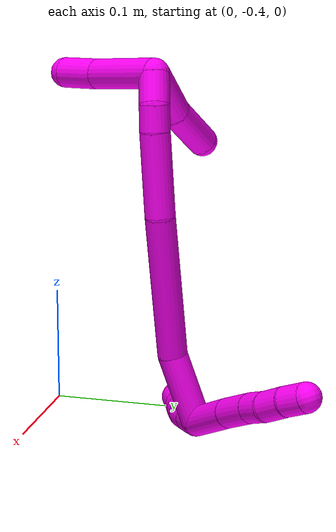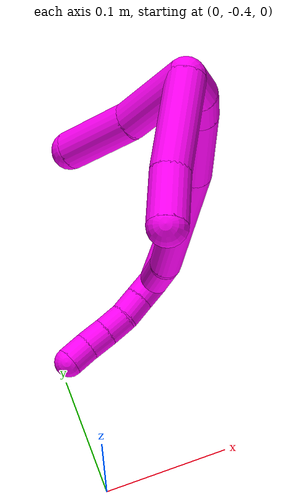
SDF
<sdf version="1.7">
 <world name="default">
  <model name="10">
   <static>0</static>
   <link name="10">
    <collision name="collision-cylinder-e_1_2_8">
     <pose>0.009582 0.024566 -0.001098 -1.61547 0.371574 -0.388143</pose>
     <geometry><cylinder><radius>0.0125</radius><length>0.052782</length></cylinder></geometry>
     <surface>
      <friction><ode><mu>1.16</mu><mu2>1.16</mu2><slip1>0</slip1><slip2>0</slip2></ode></friction>
      <contact><ode><kp>1e+06</kp><kd>1</kd><max_vel>0</max_vel><min_depth>0.001</min_depth></ode></contact>
     </surface>
    </collision>
    <visual name="visual-cylinder-e_1_2_8">
     <pose>0.009582 0.024566 -0.001098 -1.61547 0.371574 -0.388143</pose>
     <geometry><cylinder><radius>0.0125</radius><length>0.052782</length></cylinder></geometry>
     <material><ambient>1 0 0.964706 1</ambient></material>
    </visual>
    <collision name="collision-cylinder-e_2_8_9">
     <pose>0.024539 0.064834 -0.003431 -1.64926 0.32886 -0.355192</pose>
     <geometry><cylinder><radius>0.0125</radius><length>0.033286</length></cylinder></geometry>
     <surface>
      <friction><ode><mu>1.16</mu><mu2>1.16</mu2><slip1>0</slip1><slip2>0</slip2></ode></friction>
      <contact><ode><kp>1e+06</kp><kd>1</kd><max_vel>0</max_vel><min_depth>0.001</min_depth></ode></contact>
     </surface>
    </collision>
    <visual name="visual-cylinder-e_2_8_9">
     <pose>0.024539 0.064834 -0.003431 -1.64926 0.32886 -0.355192</pose>
     <geometry><cylinder><radius>0.0125</radius><length>0.033286</length></cylinder></geometry>
     <material><ambient>1 0 0.964706 1</ambient></material>
    </visual>
    <collision name="collision-cylinder-e_3_9_10">
     <pose>0.033376 0.089992 -0.006116 -1.72296 0.347233 -0.403103</pose>
     <geometry><cylinder><radius>0.0125</radius><length>0.020345</length></cylinder></geometry>
     <surface>
      <friction><ode><mu>1.16</mu><mu2>1.16</mu2><slip1>0</slip1><slip2>0</slip2></ode></friction>
      <contact><ode><kp>1e+06</kp><kd>1</kd><max_vel>0</max_vel><min_depth>0.001</min_depth></ode></contact>
     </surface>
    </collision>
    <visual name="visual-cylinder-e_3_9_10">
     <pose>0.033376 0.089992 -0.006116 -1.72296 0.347233 -0.403103</pose>
     <geometry><cylinder><radius>0.0125</radius><length>0.020345</length></cylinder></geometry>
     <material><ambient>1 0 0.964706 1</ambient></material>
    </visual>
    <collision name="collision-cylinder-e_4_10_11">
     <pose>0.038791 0.110756 -0.008217 -1.62837 0.170749 -0.18082</pose>
     <geometry><cylinder><radius>0.0125</radius><length>0.022991</length></cylinder></geometry>
     <surface>
      <friction><ode><mu>1.16</mu><mu2>1.16</mu2><slip1>0</slip1><slip2>0</slip2></ode></friction>
      <contact><ode><kp>1e+06</kp><kd>1</kd><max_vel>0</max_vel><min_depth>0.001</min_depth></ode></contact>
     </surface>
    </collision>
    <visual name="visual-cylinder-e_4_10_11">
     <pose>0.038791 0.110756 -0.008217 -1.62837 0.170749 -0.18082</pose>
     <geometry><cylinder><radius>0.0125</radius><length>0.022991</length></cylinder></geometry>
     <material><ambient>1 0 0.964706 1</ambient></material>
    </visual>
    <collision name="collision-cylinder-e_5_11_6">
     <pose>0.041247 0.132287 -0.010013 -1.68225 0.048812 -0.054577</pose>
     <geometry><cylinder><radius>0.0125</radius><length>0.020595</length></cylinder></geometry>
     <surface>
      <friction><ode><mu>1.16</mu><mu2>1.16</mu2><slip1>0</slip1><slip2>0</slip2></ode></friction>
      <contact><ode><kp>1e+06</kp><kd>1</kd><max_vel>0</max_vel><min_depth>0.001</min_depth></ode></contact>
     </surface>
    </collision>
    <visual name="visual-cylinder-e_5_11_6">
     <pose>0.041247 0.132287 -0.010013 -1.68225 0.048812 -0.054577</pose>
     <geometry><cylinder><radius>0.0125</radius><length>0.020595</length></cylinder></geometry>
     <material><ambient>1 0 0.964706 1</ambient></material>
    </visual>
    <collision name="collision-cylinder-e_1_2_12">
     <pose>-0.006146 -0.007482 0.002501 1.24816 -0.661833 -0.485031</pose>
     <geometry><cylinder><radius>0.0125</radius><length>0.02</length></cylinder></geometry>
     <surface>
      <friction><ode><mu>1.16</mu><mu2>1.16</mu2><slip1>0</slip1><slip2>0</slip2></ode></friction>
      <contact><ode><kp>1e+06</kp><kd>1</kd><max_vel>0</max_vel><min_depth>0.001</min_depth></ode></contact>
     </surface>
    </collision>
    <visual name="visual-cylinder-e_1_2_12">
     <pose>-0.006146 -0.007482 0.002501 1.24816 -0.661833 -0.485031</pose>
     <geometry><cylinder><radius>0.0125</radius><length>0.02</length></cylinder></geometry>
     <material><ambient>1 0 0.964706 1</ambient></material>
    </visual>
    <collision name="collision-cylinder-e_2_12_13">
     <pose>-0.018298 -0.022422 0.007881 1.20251 -0.64435 -0.450208</pose>
     <geometry><cylinder><radius>0.0125</radius><length>0.02</length></cylinder></geometry>
     <surface>
      <friction><ode><mu>1.16</mu><mu2>1.16</mu2><slip1>0</slip1><slip2>0</slip2></ode></friction>
      <contact><ode><kp>1e+06</kp><kd>1</kd><max_vel>0</max_vel><min_depth>0.001</min_depth></ode></contact>
     </surface>
    </collision>
    <visual name="visual-cylinder-e_2_12_13">
     <pose>-0.018298 -0.022422 0.007881 1.20251 -0.64435 -0.450208</pose>
     <geometry><cylinder><radius>0.0125</radius><length>0.02</length></cylinder></geometry>
     <material><ambient>1 0 0.964706 1</ambient></material>
    </visual>
    <collision name="collision-cylinder-e_3_13_14">
     <pose>-0.03174 -0.036183 0.012993 1.23011 -0.838348 -0.609943</pose>
     <geometry><cylinder><radius>0.0125</radius><length>0.02</length></cylinder></geometry>
     <surface>
      <friction><ode><mu>1.16</mu><mu2>1.16</mu2><slip1>0</slip1><slip2>0</slip2></ode></friction>
      <contact><ode><kp>1e+06</kp><kd>1</kd><max_vel>0</max_vel><min_depth>0.001</min_depth></ode></contact>
     </surface>
    </collision>
    <visual name="visual-cylinder-e_3_13_14">
     <pose>-0.03174 -0.036183 0.012993 1.23011 -0.838348 -0.609943</pose>
     <geometry><cylinder><radius>0.0125</radius><length>0.02</length></cylinder></geometry>
     <material><ambient>1 0 0.964706 1</ambient></material>
    </visual>
    <collision name="collision-cylinder-e_4_14_15">
     <pose>-0.046756 -0.048465 0.017834 1.15979 -0.860281 -0.58386</pose>
     <geometry><cylinder><radius>0.0125</radius><length>0.02</length></cylinder></geometry>
     <surface>
      <friction><ode><mu>1.16</mu><mu2>1.16</mu2><slip1>0</slip1><slip2>0</slip2></ode></friction>
      <contact><ode><kp>1e+06</kp><kd>1</kd><max_vel>0</max_vel><min_depth>0.001</min_depth></ode></contact>
     </surface>
    </collision>
    <visual name="visual-cylinder-e_4_14_15">
     <pose>-0.046756 -0.048465 0.017834 1.15979 -0.860281 -0.58386</pose>
     <geometry><cylinder><radius>0.0125</radius><length>0.02</length></cylinder></geometry>
     <material><ambient>1 0 0.964706 1</ambient></material>
    </visual>
    <collision name="collision-cylinder-e_5_15_5">
     <pose>-0.061235 -0.060645 0.024176 1.02853 -0.761278 -0.444676</pose>
     <geometry><cylinder><radius>0.0125</radius><length>0.02</length></cylinder></geometry>
     <surface>
      <friction><ode><mu>1.16</mu><mu2>1.16</mu2><slip1>0</slip1><slip2>0</slip2></ode></friction>
      <contact><ode><kp>1e+06</kp><kd>1</kd><max_vel>0</max_vel><min_depth>0.001</min_depth></ode></contact>
     </surface>
    </collision>
    <visual name="visual-cylinder-e_5_15_5">
     <pose>-0.061235 -0.060645 0.024176 1.02853 -0.761278 -0.444676</pose>
     <geometry><cylinder><radius>0.0125</radius><length>0.02</length></cylinder></geometry>
     <material><ambient>1 0 0.964706 1</ambient></material>
    </visual>
    <collision name="collision-cylinder-e_1_2_16">
     <pose>0.007438 0.005286 0.029092 -0.179725 0.246445 -0.022318</pose>
     <geometry><cylinder><radius>0.0125</radius><length>0.06098</length></cylinder></geometry>
     <surface>
      <friction><ode><mu>1.16</mu><mu2>1.16</mu2><slip1>0</slip1><slip2>0</slip2></ode></friction>
      <contact><ode><kp>1e+06</kp><kd>1</kd><max_vel>0</max_vel><min_depth>0.001</min_depth></ode></contact>
     </surface>
    </collision>
    <visual name="visual-cylinder-e_1_2_16">
     <pose>0.007438 0.005286 0.029092 -0.179725 0.246445 -0.022318</pose>
     <geometry><cylinder><radius>0.0125</radius><length>0.06098</length></cylinder></geometry>
     <material><ambient>1 0 0.964706 1</ambient></material>
    </visual>
    <collision name="collision-cylinder-e_2_16_17">
     <pose>0.029757 0.038955 0.11061 -0.496237 0.244608 -0.062259</pose>
     <geometry><cylinder><radius>0.0125</radius><length>0.122889</length></cylinder></geometry>
     <surface>
      <friction><ode><mu>1.16</mu><mu2>1.16</mu2><slip1>0</slip1><slip2>0</slip2></ode></friction>
      <contact><ode><kp>1e+06</kp><kd>1</kd><max_vel>0</max_vel><min_depth>0.001</min_depth></ode></contact>
     </surface>
    </collision>
    <visual name="visual-cylinder-e_2_16_17">
     <pose>0.029757 0.038955 0.11061 -0.496237 0.244608 -0.062259</pose>
     <geometry><cylinder><radius>0.0125</radius><length>0.122889</length></cylinder></geometry>
     <material><ambient>1 0 0.964706 1</ambient></material>
    </visual>
    <collision name="collision-cylinder-e_3_17_18">
     <pose>0.048428 0.081451 0.194399 -0.422781 0.109763 -0.023577</pose>
     <geometry><cylinder><radius>0.0125</radius><length>0.069201</length></cylinder></geometry>
     <surface>
      <friction><ode><mu>1.16</mu><mu2>1.16</mu2><slip1>0</slip1><slip2>0</slip2></ode></friction>
      <contact><ode><kp>1e+06</kp><kd>1</kd><max_vel>0</max_vel><min_depth>0.001</min_depth></ode></contact>
     </surface>
    </collision>
    <visual name="visual-cylinder-e_3_17_18">
     <pose>0.048428 0.081451 0.194399 -0.422781 0.109763 -0.023577</pose>
     <geometry><cylinder><radius>0.0125</radius><length>0.069201</length></cylinder></geometry>
     <material><ambient>1 0 0.964706 1</ambient></material>
    </visual>
    <collision name="collision-cylinder-e_4_18_19">
     <pose>0.052405 0.099791 0.235659 -0.403895 0.01741 -0.003565</pose>
     <geometry><cylinder><radius>0.0125</radius><length>0.021527</length></cylinder></geometry>
     <surface>
      <friction><ode><mu>1.16</mu><mu2>1.16</mu2><slip1>0</slip1><slip2>0</slip2></ode></friction>
      <contact><ode><kp>1e+06</kp><kd>1</kd><max_vel>0</max_vel><min_depth>0.001</min_depth></ode></contact>
     </surface>
    </collision>
    <visual name="visual-cylinder-e_4_18_19">
     <pose>0.052405 0.099791 0.235659 -0.403895 0.01741 -0.003565</pose>
     <geometry><cylinder><radius>0.0125</radius><length>0.021527</length></cylinder></geometry>
     <material><ambient>1 0 0.964706 1</ambient></material>
    </visual>
    <collision name="collision-cylinder-e_5_19_1">
     <pose>0.049573 0.106659 0.257606 -0.215469 -0.240032 0.026084</pose>
     <geometry><cylinder><radius>0.0125</radius><length>0.025403</length></cylinder></geometry>
     <surface>
      <friction><ode><mu>1.16</mu><mu2>1.16</mu2><slip1>0</slip1><slip2>0</slip2></ode></friction>
      <contact><ode><kp>1e+06</kp><kd>1</kd><max_vel>0</max_vel><min_depth>0.001</min_depth></ode></contact>
     </surface>
    </collision>
    <visual name="visual-cylinder-e_5_19_1">
     <pose>0.049573 0.106659 0.257606 -0.215469 -0.240032 0.026084</pose>
     <geometry><cylinder><radius>0.0125</radius><length>0.025403</length></cylinder></geometry>
     <material><ambient>1 0 0.964706 1</ambient></material>
    </visual>
    <collision name="collision-cylinder-e_1_1_20">
     <pose>0.042422 0.079328 0.281276 1.20097 -0.12783 -0.087607</pose>
     <geometry><cylinder><radius>0.0125</radius><length>0.064811</length></cylinder></geometry>
     <surface>
      <friction><ode><mu>1.16</mu><mu2>1.16</mu2><slip1>0</slip1><slip2>0</slip2></ode></friction>
      <contact><ode><kp>1e+06</kp><kd>1</kd><max_vel>0</max_vel><min_depth>0.001</min_depth></ode></contact>
     </surface>
    </collision>
    <visual name="visual-cylinder-e_1_1_20">
     <pose>0.042422 0.079328 0.281276 1.20097 -0.12783 -0.087607</pose>
     <geometry><cylinder><radius>0.0125</radius><length>0.064811</length></cylinder></geometry>
     <material><ambient>1 0 0.964706 1</ambient></material>
    </visual>
    <collision name="collision-cylinder-e_2_20_4">
     <pose>0.037789 0.033289 0.300038 1.15251 -0.028573 -0.018568</pose>
     <geometry><cylinder><radius>0.0125</radius><length>0.035189</length></cylinder></geometry>
     <surface>
      <friction><ode><mu>1.16</mu><mu2>1.16</mu2><slip1>0</slip1><slip2>0</slip2></ode></friction>
      <contact><ode><kp>1e+06</kp><kd>1</kd><max_vel>0</max_vel><min_depth>0.001</min_depth></ode></contact>
     </surface>
    </collision>
    <visual name="visual-cylinder-e_2_20_4">
     <pose>0.037789 0.033289 0.300038 1.15251 -0.028573 -0.018568</pose>
     <geometry><cylinder><radius>0.0125</radius><length>0.035189</length></cylinder></geometry>
     <material><ambient>1 0 0.964706 1</ambient></material>
    </visual>
    <collision name="collision-cylinder-e_1_1_21">
     <pose>0.027951 0.099348 0.256054 2.5102 -0.83469 -1.8718</pose>
     <geometry><cylinder><radius>0.0125</radius><length>0.050204</length></cylinder></geometry>
     <surface>
      <friction><ode><mu>1.16</mu><mu2>1.16</mu2><slip1>0</slip1><slip2>0</slip2></ode></friction>
      <contact><ode><kp>1e+06</kp><kd>1</kd><max_vel>0</max_vel><min_depth>0.001</min_depth></ode></contact>
     </surface>
    </collision>
    <visual name="visual-cylinder-e_1_1_21">
     <pose>0.027951 0.099348 0.256054 2.5102 -0.83469 -1.8718</pose>
     <geometry><cylinder><radius>0.0125</radius><length>0.050204</length></cylinder></geometry>
     <material><ambient>1 0 0.964706 1</ambient></material>
    </visual>
    <collision name="collision-cylinder-e_2_21_3">
     <pose>-0.0115 0.082737 0.23058 2.63007 -0.992368 -2.24164</pose>
     <geometry><cylinder><radius>0.0125</radius><length>0.049796</length></cylinder></geometry>
     <surface>
      <friction><ode><mu>1.16</mu><mu2>1.16</mu2><slip1>0</slip1><slip2>0</slip2></ode></friction>
      <contact><ode><kp>1e+06</kp><kd>1</kd><max_vel>0</max_vel><min_depth>0.001</min_depth></ode></contact>
     </surface>
    </collision>
    <visual name="visual-cylinder-e_2_21_3">
     <pose>-0.0115 0.082737 0.23058 2.63007 -0.992368 -2.24164</pose>
     <geometry><cylinder><radius>0.0125</radius><length>0.049796</length></cylinder></geometry>
     <material><ambient>1 0 0.964706 1</ambient></material>
    </visual>
    <collision name="collision-sphere-3">
     <pose>-0.032347 0.076074 0.218711 0 -0 0</pose>
     <geometry><sphere><radius>0.0125</radius></sphere></geometry>
     <surface>
      <friction><ode><mu>1.16</mu><mu2>1.16</mu2><slip1>0</slip1><slip2>0</slip2></ode></friction>
      <contact><ode><kp>1e+06</kp><kd>1</kd><max_vel>0</max_vel><min_depth>0.001</min_depth></ode></contact>
     </surface>
    </collision>
    <visual name="visual-sphere-3">
     <pose>-0.032347 0.076074 0.218711 0 -0 0</pose>
     <geometry><sphere><radius>0.0125</radius></sphere></geometry>
     <material><ambient>1 0 0.964706 1</ambient></material>
    </visual>
    <collision name="collision-sphere-21">
     <pose>0.009348 0.0894 0.24245 0 -0 0</pose>
     <geometry><sphere><radius>0.0125</radius></sphere></geometry>
     <surface>
      <friction><ode><mu>1.16</mu><mu2>1.16</mu2><slip1>0</slip1><slip2>0</slip2></ode></friction>
      <contact><ode><kp>1e+06</kp><kd>1</kd><max_vel>0</max_vel><min_depth>0.001</min_depth></ode></contact>
     </surface>
    </collision>
    <visual name="visual-sphere-21">
     <pose>0.009348 0.0894 0.24245 0 -0 0</pose>
     <geometry><sphere><radius>0.0125</radius></sphere></geometry>
     <material><ambient>1 0 0.964706 1</ambient></material>
    </visual>
    <collision name="collision-sphere-4">
     <pose>0.037286 0.017218 0.307181 0 -0 0</pose>
     <geometry><sphere><radius>0.0125</radius></sphere></geometry>
     <surface>
      <friction><ode><mu>1.16</mu><mu2>1.16</mu2><slip1>0</slip1><slip2>0</slip2></ode></friction>
      <contact><ode><kp>1e+06</kp><kd>1</kd><max_vel>0</max_vel><min_depth>0.001</min_depth></ode></contact>
     </surface>
    </collision>
    <visual name="visual-sphere-4">
     <pose>0.037286 0.017218 0.307181 0 -0 0</pose>
     <geometry><sphere><radius>0.0125</radius></sphere></geometry>
     <material><ambient>1 0 0.964706 1</ambient></material>
    </visual>
    <collision name="collision-sphere-20">
     <pose>0.038291 0.04936 0.292894 0 -0 0</pose>
     <geometry><sphere><radius>0.0125</radius></sphere></geometry>
     <surface>
      <friction><ode><mu>1.16</mu><mu2>1.16</mu2><slip1>0</slip1><slip2>0</slip2></ode></friction>
      <contact><ode><kp>1e+06</kp><kd>1</kd><max_vel>0</max_vel><min_depth>0.001</min_depth></ode></contact>
     </surface>
    </collision>
    <visual name="visual-sphere-20">
     <pose>0.038291 0.04936 0.292894 0 -0 0</pose>
     <geometry><sphere><radius>0.0125</radius></sphere></geometry>
     <material><ambient>1 0 0.964706 1</ambient></material>
    </visual>
    <collision name="collision-sphere-6">
     <pose>0.04175 0.142509 -0.011157 0 -0 0</pose>
     <geometry><sphere><radius>0.0125</radius></sphere></geometry>
     <surface>
      <friction><ode><mu>1.16</mu><mu2>1.16</mu2><slip1>0</slip1><slip2>0</slip2></ode></friction>
      <contact><ode><kp>1e+06</kp><kd>1</kd><max_vel>0</max_vel><min_depth>0.001</min_depth></ode></contact>
     </surface>
    </collision>
    <visual name="visual-sphere-6">
     <pose>0.04175 0.142509 -0.011157 0 -0 0</pose>
     <geometry><sphere><radius>0.0125</radius></sphere></geometry>
     <material><ambient>1 0 0.964706 1</ambient></material>
    </visual>
    <collision name="collision-sphere-11">
     <pose>0.040745 0.122066 -0.008869 0 -0 0</pose>
     <geometry><sphere><radius>0.0125</radius></sphere></geometry>
     <surface>
      <friction><ode><mu>1.16</mu><mu2>1.16</mu2><slip1>0</slip1><slip2>0</slip2></ode></friction>
      <contact><ode><kp>1e+06</kp><kd>1</kd><max_vel>0</max_vel><min_depth>0.001</min_depth></ode></contact>
     </surface>
    </collision>
    <visual name="visual-sphere-11">
     <pose>0.040745 0.122066 -0.008869 0 -0 0</pose>
     <geometry><sphere><radius>0.0125</radius></sphere></geometry>
     <material><ambient>1 0 0.964706 1</ambient></material>
    </visual>
    <collision name="collision-sphere-10">
     <pose>0.036838 0.099447 -0.007566 0 -0 0</pose>
     <geometry><sphere><radius>0.0125</radius></sphere></geometry>
     <surface>
      <friction><ode><mu>1.16</mu><mu2>1.16</mu2><slip1>0</slip1><slip2>0</slip2></ode></friction>
      <contact><ode><kp>1e+06</kp><kd>1</kd><max_vel>0</max_vel><min_depth>0.001</min_depth></ode></contact>
     </surface>
    </collision>
    <visual name="visual-sphere-10">
     <pose>0.036838 0.099447 -0.007566 0 -0 0</pose>
     <geometry><sphere><radius>0.0125</radius></sphere></geometry>
     <material><ambient>1 0 0.964706 1</ambient></material>
    </visual>
    <collision name="collision-sphere-9">
     <pose>0.029915 0.080537 -0.004666 0 -0 0</pose>
     <geometry><sphere><radius>0.0125</radius></sphere></geometry>
     <surface>
      <friction><ode><mu>1.16</mu><mu2>1.16</mu2><slip1>0</slip1><slip2>0</slip2></ode></friction>
      <contact><ode><kp>1e+06</kp><kd>1</kd><max_vel>0</max_vel><min_depth>0.001</min_depth></ode></contact>
     </surface>
    </collision>
    <visual name="visual-sphere-9">
     <pose>0.029915 0.080537 -0.004666 0 -0 0</pose>
     <geometry><sphere><radius>0.0125</radius></sphere></geometry>
     <material><ambient>1 0 0.964706 1</ambient></material>
    </visual>
    <collision name="collision-sphere-2">
     <geometry><sphere><radius>0.0125</radius></sphere></geometry>
     <surface>
      <friction><ode><mu>1.16</mu><mu2>1.16</mu2><slip1>0</slip1><slip2>0</slip2></ode></friction>
      <contact><ode><kp>1e+06</kp><kd>1</kd><max_vel>0</max_vel><min_depth>0.001</min_depth></ode></contact>
     </surface>
    </collision>
    <visual name="visual-sphere-2">
     <geometry><sphere><radius>0.0125</radius></sphere></geometry>
     <material><ambient>1 0 0.964706 1</ambient></material>
    </visual>
    <collision name="collision-sphere-19">
     <pose>0.052593 0.104021 0.245555 0 -0 0</pose>
     <geometry><sphere><radius>0.0125</radius></sphere></geometry>
     <surface>
      <friction><ode><mu>1.16</mu><mu2>1.16</mu2><slip1>0</slip1><slip2>0</slip2></ode></friction>
      <contact><ode><kp>1e+06</kp><kd>1</kd><max_vel>0</max_vel><min_depth>0.001</min_depth></ode></contact>
     </surface>
    </collision>
    <visual name="visual-sphere-19">
     <pose>0.052593 0.104021 0.245555 0 -0 0</pose>
     <geometry><sphere><radius>0.0125</radius></sphere></geometry>
     <material><ambient>1 0 0.964706 1</ambient></material>
    </visual>
    <collision name="collision-sphere-8">
     <pose>0.019164 0.049131 -0.002197 0 -0 0</pose>
     <geometry><sphere><radius>0.0125</radius></sphere></geometry>
     <surface>
      <friction><ode><mu>1.16</mu><mu2>1.16</mu2><slip1>0</slip1><slip2>0</slip2></ode></friction>
      <contact><ode><kp>1e+06</kp><kd>1</kd><max_vel>0</max_vel><min_depth>0.001</min_depth></ode></contact>
     </surface>
    </collision>
    <visual name="visual-sphere-8">
     <pose>0.019164 0.049131 -0.002197 0 -0 0</pose>
     <geometry><sphere><radius>0.0125</radius></sphere></geometry>
     <material><ambient>1 0 0.964706 1</ambient></material>
    </visual>
    <collision name="collision-sphere-12">
     <pose>-0.012291 -0.014963 0.005003 0 -0 0</pose>
     <geometry><sphere><radius>0.0125</radius></sphere></geometry>
     <surface>
      <friction><ode><mu>1.16</mu><mu2>1.16</mu2><slip1>0</slip1><slip2>0</slip2></ode></friction>
      <contact><ode><kp>1e+06</kp><kd>1</kd><max_vel>0</max_vel><min_depth>0.001</min_depth></ode></contact>
     </surface>
    </collision>
    <visual name="visual-sphere-12">
     <pose>-0.012291 -0.014963 0.005003 0 -0 0</pose>
     <geometry><sphere><radius>0.0125</radius></sphere></geometry>
     <material><ambient>1 0 0.964706 1</ambient></material>
    </visual>
    <collision name="collision-sphere-13">
     <pose>-0.024305 -0.029881 0.010759 0 -0 0</pose>
     <geometry><sphere><radius>0.0125</radius></sphere></geometry>
     <surface>
      <friction><ode><mu>1.16</mu><mu2>1.16</mu2><slip1>0</slip1><slip2>0</slip2></ode></friction>
      <contact><ode><kp>1e+06</kp><kd>1</kd><max_vel>0</max_vel><min_depth>0.001</min_depth></ode></contact>
     </surface>
    </collision>
    <visual name="visual-sphere-13">
     <pose>-0.024305 -0.029881 0.010759 0 -0 0</pose>
     <geometry><sphere><radius>0.0125</radius></sphere></geometry>
     <material><ambient>1 0 0.964706 1</ambient></material>
    </visual>
    <collision name="collision-sphere-14">
     <pose>-0.039176 -0.042486 0.015228 0 -0 0</pose>
     <geometry><sphere><radius>0.0125</radius></sphere></geometry>
     <surface>
      <friction><ode><mu>1.16</mu><mu2>1.16</mu2><slip1>0</slip1><slip2>0</slip2></ode></friction>
      <contact><ode><kp>1e+06</kp><kd>1</kd><max_vel>0</max_vel><min_depth>0.001</min_depth></ode></contact>
     </surface>
    </collision>
    <visual name="visual-sphere-14">
     <pose>-0.039176 -0.042486 0.015228 0 -0 0</pose>
     <geometry><sphere><radius>0.0125</radius></sphere></geometry>
     <material><ambient>1 0 0.964706 1</ambient></material>
    </visual>
    <collision name="collision-sphere-15">
     <pose>-0.054336 -0.054444 0.020439 0 -0 0</pose>
     <geometry><sphere><radius>0.0125</radius></sphere></geometry>
     <surface>
      <friction><ode><mu>1.16</mu><mu2>1.16</mu2><slip1>0</slip1><slip2>0</slip2></ode></friction>
      <contact><ode><kp>1e+06</kp><kd>1</kd><max_vel>0</max_vel><min_depth>0.001</min_depth></ode></contact>
     </surface>
    </collision>
    <visual name="visual-sphere-15">
     <pose>-0.054336 -0.054444 0.020439 0 -0 0</pose>
     <geometry><sphere><radius>0.0125</radius></sphere></geometry>
     <material><ambient>1 0 0.964706 1</ambient></material>
    </visual>
    <collision name="collision-sphere-5">
     <pose>-0.068133 -0.066846 0.027912 0 -0 0</pose>
     <geometry><sphere><radius>0.0125</radius></sphere></geometry>
     <surface>
      <friction><ode><mu>1.16</mu><mu2>1.16</mu2><slip1>0</slip1><slip2>0</slip2></ode></friction>
      <contact><ode><kp>1e+06</kp><kd>1</kd><max_vel>0</max_vel><min_depth>0.001</min_depth></ode></contact>
     </surface>
    </collision>
    <visual name="visual-sphere-5">
     <pose>-0.068133 -0.066846 0.027912 0 -0 0</pose>
     <geometry><sphere><radius>0.0125</radius></sphere></geometry>
     <material><ambient>1 0 0.964706 1</ambient></material>
    </visual>
    <collision name="collision-sphere-16">
     <pose>0.014877 0.010571 0.058185 0 -0 0</pose>
     <geometry><sphere><radius>0.0125</radius></sphere></geometry>
     <surface>
      <friction><ode><mu>1.16</mu><mu2>1.16</mu2><slip1>0</slip1><slip2>0</slip2></ode></friction>
      <contact><ode><kp>1e+06</kp><kd>1</kd><max_vel>0</max_vel><min_depth>0.001</min_depth></ode></contact>
     </surface>
    </collision>
    <visual name="visual-sphere-16">
     <pose>0.014877 0.010571 0.058185 0 -0 0</pose>
     <geometry><sphere><radius>0.0125</radius></sphere></geometry>
     <material><ambient>1 0 0.964706 1</ambient></material>
    </visual>
    <collision name="collision-sphere-17">
     <pose>0.044637 0.06734 0.163034 0 -0 0</pose>
     <geometry><sphere><radius>0.0125</radius></sphere></geometry>
     <surface>
      <friction><ode><mu>1.16</mu><mu2>1.16</mu2><slip1>0</slip1><slip2>0</slip2></ode></friction>
      <contact><ode><kp>1e+06</kp><kd>1</kd><max_vel>0</max_vel><min_depth>0.001</min_depth></ode></contact>
     </surface>
    </collision>
    <visual name="visual-sphere-17">
     <pose>0.044637 0.06734 0.163034 0 -0 0</pose>
     <geometry><sphere><radius>0.0125</radius></sphere></geometry>
     <material><ambient>1 0 0.964706 1</ambient></material>
    </visual>
    <collision name="collision-sphere-18">
     <pose>0.052218 0.095562 0.225763 0 -0 0</pose>
     <geometry><sphere><radius>0.0125</radius></sphere></geometry>
     <surface>
      <friction><ode><mu>1.16</mu><mu2>1.16</mu2><slip1>0</slip1><slip2>0</slip2></ode></friction>
      <contact><ode><kp>1e+06</kp><kd>1</kd><max_vel>0</max_vel><min_depth>0.001</min_depth></ode></contact>
     </surface>
    </collision>
    <visual name="visual-sphere-18">
     <pose>0.052218 0.095562 0.225763 0 -0 0</pose>
     <geometry><sphere><radius>0.0125</radius></sphere></geometry>
     <material><ambient>1 0 0.964706 1</ambient></material>
    </visual>
    <collision name="collision-sphere-1">
     <pose>0.046554 0.109296 0.269658 0 -0 0</pose>
     <geometry><sphere><radius>0.0125</radius></sphere></geometry>
     <surface>
      <friction><ode><mu>1.16</mu><mu2>1.16</mu2><slip1>0</slip1><slip2>0</slip2></ode></friction>
      <contact><ode><kp>1e+06</kp><kd>1</kd><max_vel>0</max_vel><min_depth>0.001</min_depth></ode></contact>
     </surface>
    </collision>
    <visual name="visual-sphere-1">
     <pose>0.046554 0.109296 0.269658 0 -0 0</pose>
     <geometry><sphere><radius>0.0125</radius></sphere></geometry>
     <material><ambient>1 0 0.964706 1</ambient></material>
    </visual>
    <inertial>
     <pose>0.020291 0.050769 0.125569 0 -0 0</pose>
     <mass>0.75</mass>
     <inertia>
      <ixx>0.000216</ixx>
      <ixy>0</ixy>
      <ixz>0</ixz>
      <iyy>0.000198</iyy>
      <iyz>0</iyz>
      <izz>-7.7e-05</izz>
     </inertia>
    </inertial>
   </link>
   <pose>0.09671 -0.247764 0.0256 0.486937 -0.095777 -0.393362</pose>
  </model>
 </world>
</sdf>
